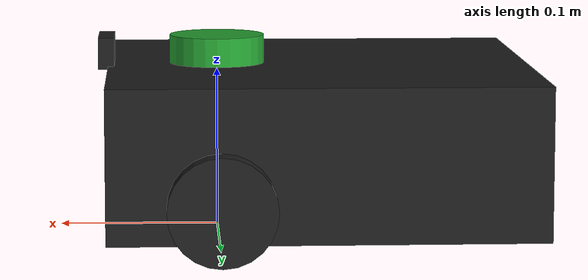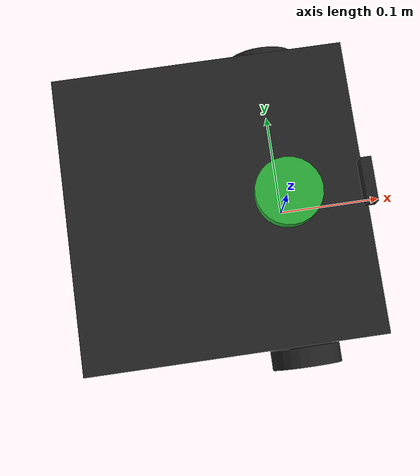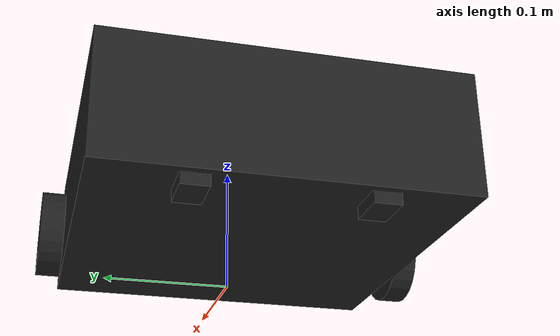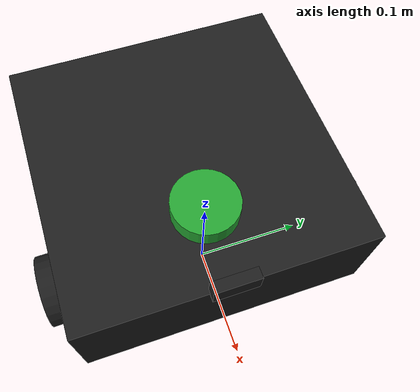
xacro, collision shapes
<?xml version="1.0" ?>
<robot name="turtlebot3_waffle_pi" xmlns:xacro="http://ros.org/wiki/xacro">
  <xacro:include filename="$(find turtlebot3_description)/urdf/common_properties.xacro"/>
  <xacro:include filename="$(find simulation)/model/turtlebot3_waffle_pi.gazebo.xacro"/>
  <xacro:property name="gpu" value="$(arg gpu)" />
  <xacro:property name="imu_radius" value="0.03"/>
	<xacro:property name="imu_length" value="0.02"/>

  <link name="base_footprint"/>

  <joint name="base_joint" type="fixed">
    <parent link="base_footprint"/>
    <child link="base_link" />
    <origin xyz="0 0 0.010" rpy="0 0 0"/>
  </joint>

  <link name="base_link">
    <visual>
      <origin xyz="-0.064 0 0.0" rpy="0 0 0"/>
      <geometry>
        <mesh filename="package://turtlebot3_description/meshes/bases/waffle_pi_base.stl" scale="0.001 0.001 0.001"/>
      </geometry>
      <material name="light_black"/>
    </visual>

    <collision>
      <origin xyz="-0.064 0 0.047" rpy="0 0 0"/>
      <geometry>
        <box size="0.266 0.266 0.094"/>
      </geometry>
    </collision>

    <inertial>
      <origin xyz="0 0 0" rpy="0 0 0"/>
      <mass value="1.3729096e+00"/>
      <inertia ixx="8.7002718e-03" ixy="-4.7576583e-05" ixz="1.1160499e-04"
               iyy="8.6195418e-03" iyz="-3.5422299e-06"
               izz="1.4612727e-02" />
    </inertial>
  </link>

  <joint name="wheel_left_joint" type="continuous">
    <parent link="base_link"/>
    <child link="wheel_left_link"/>
    <origin xyz="0.0 0.144 0.023" rpy="-1.57 0 0"/>
    <axis xyz="0 0 1"/>
  </joint>

  <link name="wheel_left_link">
    <visual>
      <origin xyz="0 0 0" rpy="1.57 0 0"/>
      <geometry>
        <mesh filename="package://turtlebot3_description/meshes/wheels/left_tire.stl" scale="0.001 0.001 0.001"/>
      </geometry>
      <material name="dark"/>
    </visual>

    <collision>
      <origin xyz="0 0 0" rpy="0 0 0"/>
      <geometry>
        <cylinder length="0.018" radius="0.033"/>
      </geometry>
    </collision>

    <inertial>
      <origin xyz="0 0 0" />
      <mass value="2.8498940e-02" />
      <inertia ixx="1.1175580e-05" ixy="-4.2369783e-11" ixz="-5.9381719e-09"
               iyy="1.1192413e-05" iyz="-1.4400107e-11"
               izz="2.0712558e-05" />
      </inertial>
  </link>

  <joint name="wheel_right_joint" type="continuous">
    <parent link="base_link"/>
    <child link="wheel_right_link"/>
    <origin xyz="0.0 -0.144 0.023" rpy="-1.57 0 0"/>
    <axis xyz="0 0 1"/>
  </joint>

  <link name="wheel_right_link">
    <visual>
      <origin xyz="0 0 0" rpy="1.57 0 0"/>
      <geometry>
        <mesh filename="package://turtlebot3_description/meshes/wheels/right_tire.stl" scale="0.001 0.001 0.001"/>
      </geometry>
      <material name="dark"/>
    </visual>

    <collision>
      <origin xyz="0 0 0" rpy="0 0 0"/>
      <geometry>
        <cylinder length="0.018" radius="0.033"/>
      </geometry>
    </collision>

    <inertial>
      <origin xyz="0 0 0" />
      <mass value="2.8498940e-02" />
      <inertia ixx="1.1175580e-05" ixy="-4.2369783e-11" ixz="-5.9381719e-09"
               iyy="1.1192413e-05" iyz="-1.4400107e-11"
               izz="2.0712558e-05" />
      </inertial>
  </link>

  <joint name="caster_back_right_joint" type="fixed">
    <parent link="base_link"/>
    <child link="caster_back_right_link"/>
    <origin xyz="-0.177 -0.064 -0.004" rpy="-1.57 0 0"/>
  </joint>

  <link name="caster_back_right_link">
    <collision>
      <origin xyz="0 0.001 0" rpy="0 0 0"/>
      <geometry>
        <box size="0.030 0.009 0.020"/>
      </geometry>
    </collision>

    <inertial>
      <origin xyz="0 0 0" />
      <mass value="0.005" />
      <inertia ixx="0.001" ixy="0.0" ixz="0.0"
               iyy="0.001" iyz="0.0"
               izz="0.001" />
    </inertial>
  </link>

  <joint name="caster_back_left_joint" type="fixed">
    <parent link="base_link"/>
    <child link="caster_back_left_link"/>
    <origin xyz="-0.177 0.064 -0.004" rpy="-1.57 0 0"/>
  </joint>

  <link name="caster_back_left_link">
    <collision>
      <origin xyz="0 0.001 0" rpy="0 0 0"/>
      <geometry>
        <box size="0.030 0.009 0.020"/>
      </geometry>
    </collision>

    <inertial>
      <origin xyz="0 0 0" />
      <mass value="0.005" />
      <inertia ixx="0.001" ixy="0.0" ixz="0.0"
               iyy="0.001" iyz="0.0"
               izz="0.001" />
    </inertial>
  </link>

  <joint name="imu_joint" type="fixed">
    <parent link="base_link"/>
    <child link="imu_link"/>
    <origin xyz="0.0 0 0.102" rpy="0 0 0"/>
  </joint>

  <link name="imu_link">

    <visual>
      <origin xyz=" 0 0 0 " rpy="0 0 0" />
			<geometry>
				<cylinder length="${imu_length}" radius="${imu_radius}"/>
			</geometry>
			<material name="green"/>
		</visual>

    <collision>
			<origin xyz="0.0 0.0 0.0" rpy="0 0 0" />
			<geometry>
				<cylinder length="${imu_length}" radius="${imu_radius}"/>
			</geometry>
		</collision>
  </link>

  <joint name="camera_joint" type="fixed">
    <origin xyz="0.07 0 0.102" rpy="0 0 0"/>
    <parent link="base_link"/>
    <child link="camera_link"/>
  </joint>

  <link name="camera_link">

    <visual>
      <origin xyz=" 0 0 0 " rpy="0 0 0" />
			<geometry>
				<box size="0.01 0.04 0.02"/>
			</geometry>
			<material name="black"/>
		</visual>

    <collision>
			<origin xyz="0.0 0.0 0.0" rpy="0 0 0" />
			<geometry>
				<box size="0.01 0.04 0.02"/>
			</geometry>
		</collision>
  </link>

</robot>
